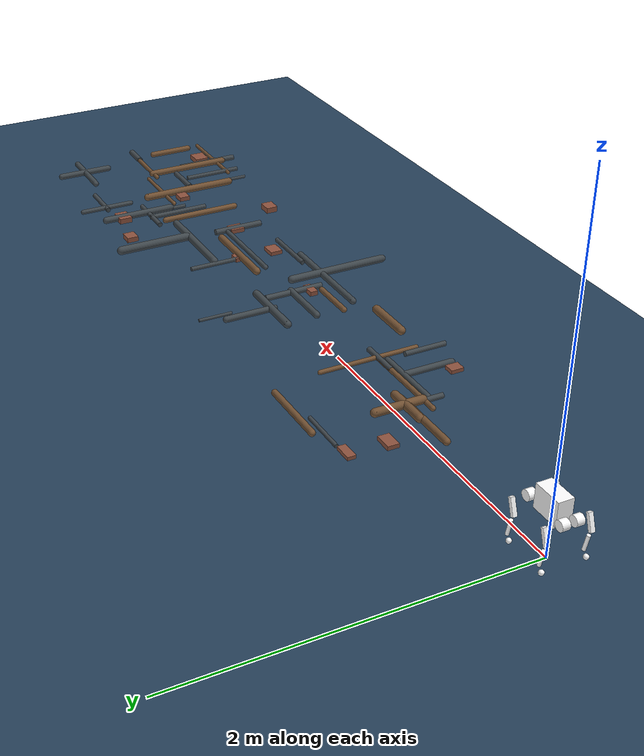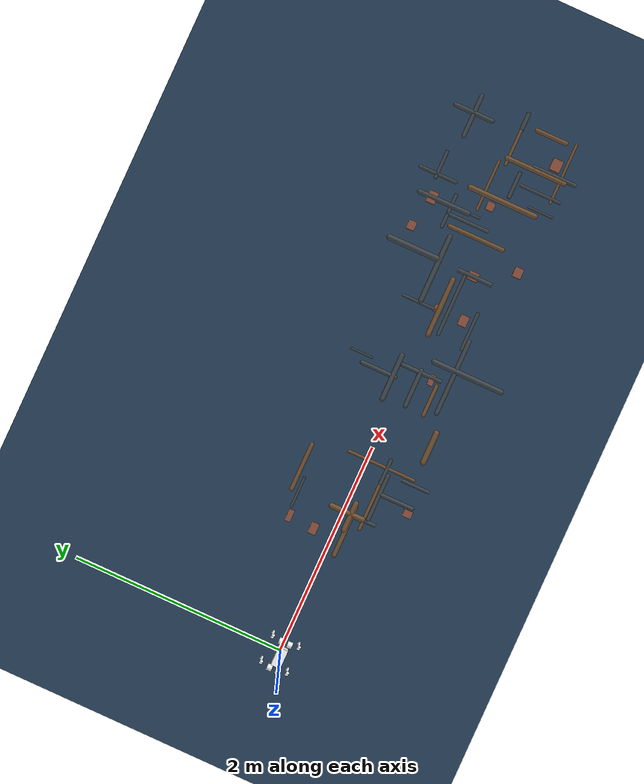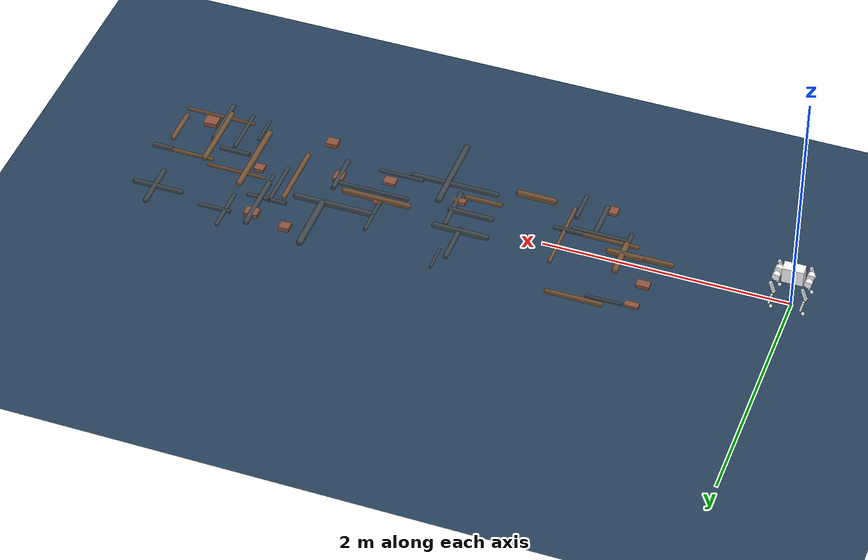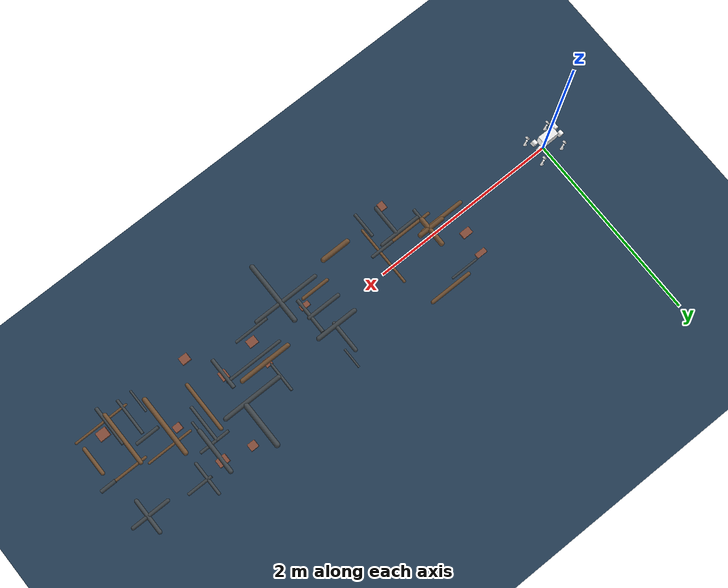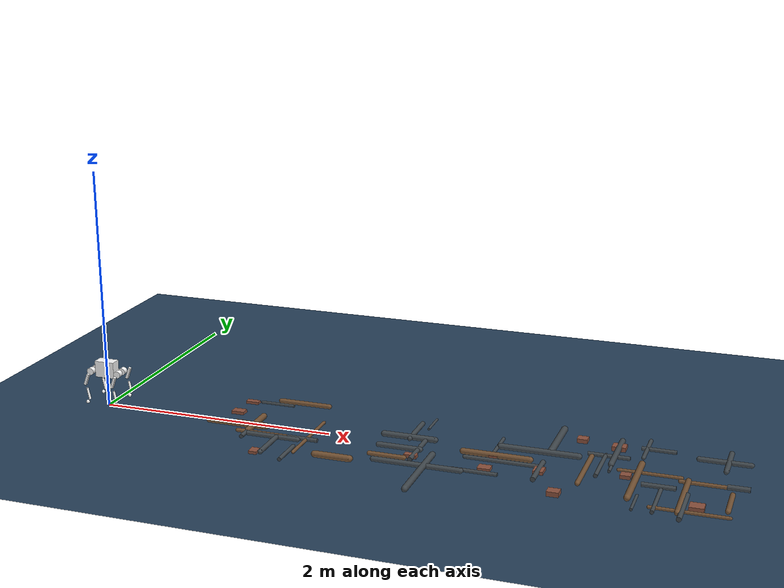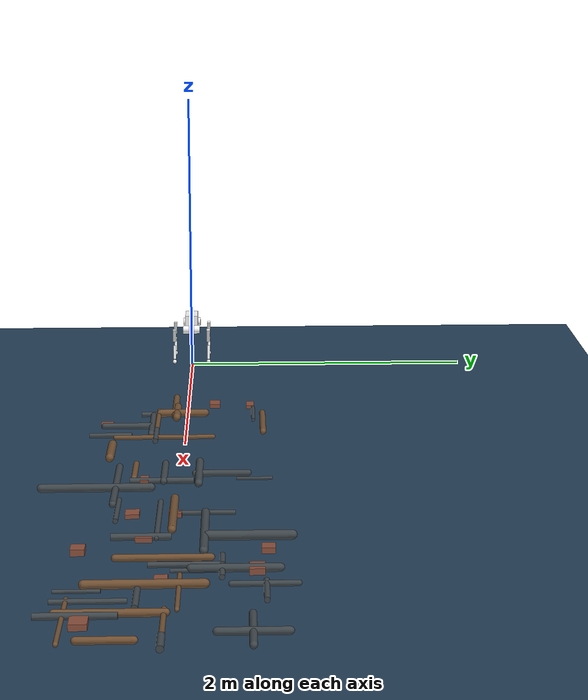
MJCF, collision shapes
<mujoco model="htdw_4438 scene debris logs">
  <include file="htdw_4438.xml"/>

  <statistic center="0 0 0.1" extent="0.8"/>

  <visual>
    <headlight diffuse="0.6 0.6 0.6" ambient="0.3 0.3 0.3" specular="0 0 0"/>
    <rgba haze="0.15 0.25 0.35 1"/>
  </visual>

  <asset>
    <texture type="skybox" builtin="gradient" rgb1="0.3 0.5 0.7" rgb2="0 0 0" width="512" height="3072"/>
    <texture type="2d" name="groundplane" builtin="checker" mark="edge" rgb1="0.2 0.3 0.4" rgb2="0.1 0.2 0.3"
      markrgb="0.8 0.8 0.8" width="300" height="300"/>
    <material name="groundplane" texture="groundplane" texuniform="true" texrepeat="5 5" reflectance="0.2"/>

    <material name="debris_brick" rgba="0.55 0.32 0.24 1" reflectance="0.05"/>
    <material name="debris_metal" rgba="0.25 0.28 0.30 1" reflectance="0.10"/>
    <material name="debris_wood" rgba="0.45 0.32 0.20 1" reflectance="0.05"/>
  </asset>

  <worldbody>
    <light pos="0 0 1.5" dir="0 0 -1" directional="true"/>
    <geom name="floor" size="0 0 0.05" type="plane" material="groundplane"/>

    <!-- Many sideways logs/pipes (static). -->
    <geom pos="1.582 0.509 0.020" quat="0.707107 0 0.707107 0" type="capsule" size="0.020 0.218" material="debris_wood"/>
    <geom pos="5.105 0.420 0.021" quat="0.707107 0.707107 0 0" type="capsule" size="0.021 0.180" material="debris_metal"/>
    <geom pos="2.211 -0.464 0.027" quat="0.707107 0 0.707107 0" type="capsule" size="0.027 0.143" material="debris_wood"/>
    <geom pos="2.594 -0.291 0.018" quat="0.707107 0 0.707107 0" type="capsule" size="0.018 0.143" material="debris_wood"/>
    <geom pos="4.567 0.035 0.013" quat="0.707107 0 0.707107 0" type="capsule" size="0.013 0.238" material="debris_wood"/>
    <geom pos="4.472 0.486 0.016" quat="0.707107 0.707107 0 0" type="capsule" size="0.016 0.177" material="debris_metal"/>
    <geom pos="1.211 -0.083 0.022" quat="0.707107 0 0.707107 0" type="capsule" size="0.022 0.230" material="debris_wood"/>
    <geom pos="2.658 0.244 0.020" quat="0.707107 0.707107 0 0" type="capsule" size="0.020 0.162" material="debris_metal"/>
    <geom pos="3.472 -0.111 0.016" quat="0.707107 0 0.707107 0" type="capsule" size="0.016 0.305" material="debris_metal"/>
    <geom pos="4.485 -0.145 0.025" quat="0.707107 0.707107 0 0" type="capsule" size="0.025 0.317" material="debris_wood"/>
    <geom pos="1.352 -0.070 0.026" quat="0.707107 0 0.707107 0" type="capsule" size="0.026 0.129" material="debris_wood"/>
    <geom pos="1.610 -0.228 0.019" quat="0.707107 0 0.707107 0" type="capsule" size="0.019 0.215" material="debris_metal"/>
    <geom pos="2.634 -0.108 0.021" quat="0.707107 0 0.707107 0" type="capsule" size="0.021 0.172" material="debris_metal"/>
    <geom pos="1.598 -0.193 0.016" quat="0.707107 0 0.707107 0" type="capsule" size="0.016 0.311" material="debris_wood"/>
    <geom pos="4.861 -0.300 0.022" quat="0.707107 0.707107 0 0" type="capsule" size="0.022 0.281" material="debris_wood"/>
    <geom pos="4.093 -0.062 0.020" quat="0.707107 0.707107 0 0" type="capsule" size="0.020 0.261" material="debris_wood"/>
    <geom pos="2.647 0.105 0.024" quat="0.707107 0 0.707107 0" type="capsule" size="0.024 0.213" material="debris_metal"/>
    <geom pos="1.647 -0.392 0.020" quat="0.707107 0.707107 0 0" type="capsule" size="0.020 0.154" material="debris_metal"/>
    <geom pos="2.868 -0.391 0.021" quat="0.707107 0 0.707107 0" type="capsule" size="0.021 0.350" material="debris_metal"/>
    <geom pos="1.376 -0.031 0.026" quat="0.707107 0.707107 0 0" type="capsule" size="0.026 0.151" material="debris_wood"/>
    <geom pos="3.779 0.412 0.028" quat="0.707107 0.707107 0 0" type="capsule" size="0.028 0.235" material="debris_metal"/>
    <geom pos="5.043 -0.030 0.015" quat="0.707107 0 0.707107 0" type="capsule" size="0.015 0.241" material="debris_wood"/>
    <geom pos="4.938 -0.537 0.013" quat="0.707107 0 0.707107 0" type="capsule" size="0.013 0.286" material="debris_wood"/>
    <geom pos="3.397 -0.029 0.024" quat="0.707107 0 0.707107 0" type="capsule" size="0.024 0.268" material="debris_wood"/>
    <geom pos="1.885 -0.138 0.014" quat="0.707107 0.707107 0 0" type="capsule" size="0.014 0.319" material="debris_wood"/>
    <geom pos="2.929 -0.508 0.025" quat="0.707107 0.707107 0 0" type="capsule" size="0.025 0.329" material="debris_metal"/>
    <geom pos="4.263 0.331 0.023" quat="0.707107 0.707107 0 0" type="capsule" size="0.023 0.239" material="debris_metal"/>
    <geom pos="5.196 -0.303 0.020" quat="0.707107 0.707107 0 0" type="capsule" size="0.020 0.143" material="debris_wood"/>
    <geom pos="5.076 0.418 0.020" quat="0.707107 0 0.707107 0" type="capsule" size="0.020 0.197" material="debris_metal"/>
    <geom pos="3.692 0.156 0.024" quat="0.707107 0 0.707107 0" type="capsule" size="0.024 0.311" material="debris_metal"/>

    <geom pos="4.189 0.066 0.016" quat="0.707107 0.707107 0 0" type="cylinder" size="0.016 0.207" material="debris_metal"/>
    <geom pos="1.373 -0.109 0.017" quat="0.707107 0.707107 0 0" type="cylinder" size="0.017 0.202" material="debris_metal"/>
    <geom pos="4.887 -0.471 0.019" quat="0.707107 0.707107 0 0" type="cylinder" size="0.019 0.214" material="debris_metal"/>
    <geom pos="5.226 -0.031 0.020" quat="0.707107 0 0.707107 0" type="cylinder" size="0.020 0.083" material="debris_metal"/>
    <geom pos="4.666 -0.179 0.018" quat="0.707107 0 0.707107 0" type="cylinder" size="0.018 0.128" material="debris_metal"/>
    <geom pos="2.790 -0.119 0.019" quat="0.707107 0.707107 0 0" type="cylinder" size="0.019 0.195" material="debris_metal"/>
    <geom pos="3.359 0.166 0.014" quat="0.707107 0.707107 0 0" type="cylinder" size="0.014 0.164" material="debris_metal"/>
    <geom pos="3.308 -0.358 0.015" quat="0.707107 0 0.707107 0" type="cylinder" size="0.015 0.186" material="debris_metal"/>
    <geom pos="1.843 -0.491 0.016" quat="0.707107 0.707107 0 0" type="cylinder" size="0.016 0.138" material="debris_metal"/>
    <geom pos="4.215 0.259 0.016" quat="0.707107 0 0.707107 0" type="cylinder" size="0.016 0.165" material="debris_metal"/>
    <geom pos="4.564 0.493 0.016" quat="0.707107 0 0.707107 0" type="cylinder" size="0.016 0.136" material="debris_metal"/>
    <geom pos="3.766 -0.198 0.020" quat="0.707107 0.707107 0 0" type="cylinder" size="0.020 0.169" material="debris_metal"/>
    <geom pos="1.852 -0.194 0.017" quat="0.707107 0 0.707107 0" type="cylinder" size="0.017 0.127" material="debris_metal"/>
    <geom pos="4.268 0.104 0.012" quat="0.707107 0.707107 0 0" type="cylinder" size="0.012 0.124" material="debris_metal"/>
    <geom pos="2.733 0.445 0.010" quat="0.707107 0.707107 0 0" type="cylinder" size="0.010 0.109" material="debris_metal"/>
    <geom pos="4.541 -0.493 0.011" quat="0.707107 0.707107 0 0" type="cylinder" size="0.011 0.125" material="debris_metal"/>
    <geom pos="1.360 0.446 0.012" quat="0.707107 0 0.707107 0" type="cylinder" size="0.012 0.149" material="debris_metal"/>
    <geom pos="4.689 -0.423 0.015" quat="0.707107 0.707107 0 0" type="cylinder" size="0.015 0.200" material="debris_metal"/>

    <geom pos="1.589 -0.529 0.012" type="box" size="0.034 0.041 0.012" material="debris_brick"/>
    <geom pos="2.769 -0.227 0.015" type="box" size="0.051 0.026 0.015" material="debris_brick"/>
    <geom pos="3.375 -0.019 0.013" type="box" size="0.035 0.038 0.013" material="debris_brick"/>
    <geom pos="3.370 -0.267 0.013" type="box" size="0.050 0.041 0.013" material="debris_brick"/>
    <geom pos="4.980 -0.447 0.018" type="box" size="0.055 0.048 0.018" material="debris_brick"/>
    <geom pos="3.963 -0.533 0.019" type="box" size="0.047 0.040 0.019" material="debris_brick"/>
    <geom pos="3.958 0.511 0.017" type="box" size="0.042 0.038 0.017" material="debris_brick"/>
    <geom pos="4.262 0.446 0.018" type="box" size="0.055 0.043 0.018" material="debris_brick"/>
    <geom pos="1.124 0.184 0.013" type="box" size="0.054 0.036 0.013" material="debris_brick"/>
    <geom pos="3.770 -0.182 0.014" type="box" size="0.040 0.048 0.014" material="debris_brick"/>
    <geom pos="1.140 0.426 0.011" type="box" size="0.056 0.026 0.011" material="debris_brick"/>
    <geom pos="4.403 -0.062 0.015" type="box" size="0.040 0.036 0.015" material="debris_brick"/>
  </worldbody>
</mujoco>

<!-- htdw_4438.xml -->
<mujoco model="htdw_4438">
    <compiler angle="radian" meshdir="../meshes" />
    <size njmax="500" nconmax="100" />

    <asset>
        <mesh name="base_link_simple" file="base_link_simple.STL" />
        <mesh name="FL_hip" file="FL_hip.STL" />
        <mesh name="FL_thigh" file="FL_thigh.STL" />
        <mesh name="FL_calf" file="FL_calf.STL" />
        <mesh name="FL_foot" file="FL_foot.STL" />
        <mesh name="FR_hip" file="FR_hip.STL" />
        <mesh name="FR_thigh" file="FR_thigh.STL" />
        <mesh name="FR_calf" file="FR_calf.STL" />
        <mesh name="FR_foot" file="FR_foot.STL" />
        <mesh name="RL_hip" file="RL_hip.STL" />
        <mesh name="RL_thigh" file="RL_thigh.STL" />
        <mesh name="RL_calf" file="RL_calf.STL" />
        <mesh name="RL_foot" file="RL_foot.STL" />
        <mesh name="RR_hip" file="RR_hip.STL" />
        <mesh name="RR_thigh" file="RR_thigh.STL" />
        <mesh name="RR_calf" file="RR_calf.STL" />
        <mesh name="RR_foot" file="RR_foot.STL" />
    </asset>

    <!-- 统一设置阻尼、摩擦力、碰撞解算参数 -->
    <default>
        <!-- IsaacGym/LeggedGym cfg.asset.armature = 0.005; 这里对齐以提升数值稳定性 -->
	        <!-- URDF 未显式设置关节被动阻尼；此处设为 0 以对齐 IsaacGym（被动阻尼主要由 PD 的 Kd 提供） -->
	        <joint limited="true" damping="0.0" frictionloss="0.0" armature="0.005"/>
        <!-- 原 solref=0.005 过硬，容易在接触+高频PD下抖动；改为更温和的接触时间常数 -->
        <geom contype="1" conaffinity="1" friction="0.8 0.05 0.05" solref="0.02 1"/>
    </default>

    <worldbody>
        <!-- Robot Base (Root Body) from Snippet -->
        <body name="robot" pos="0 0 0.3" quat="1 0 0 0">
            <joint name="float_base" type="free" limited="false"/>
	        <!-- 与 resources/robots/htdw_4438/urdf/htdw_4438.urdf 的 base_link 惯性对齐（避免 sim2sim gap） -->
	        <inertial pos="-0.00139370 0.00012462 0.01353999" quat="0.05699976 0.72222690 0.06363175 0.68636020" mass="2.68214792" diaginertia="0.01217432 0.01195068 0.00675497"/>
            <site name="imu" pos="-0.02557 0 0.04232" />

            <!-- Adding Visual Geoms from Original File to the Root Body -->
            <geom type="mesh" contype="0" conaffinity="0" group="1" rgba="1 1 1 1" mesh="base_link_simple" />
            <geom size="0.085 0.045 0.069" pos="0 0 0.025" type="box" rgba="1 1 1 1" />

            <!-- Front Left Leg -->
            <!-- Joint names changed to Uppercase to match actuators -->
            <body name="fl_hip" pos="0.0909 0.04 0">
                <inertial pos="0.0326958 0.00444394 -9.507e-05" quat="0.465966 0.463585 0.53558 0.530206" mass="0.292358" diaginertia="0.000412728 0.000405494 8.3118e-05" />
                <joint name="FL_hip_joint" pos="0 0 0" axis="1 0 0" limited="true" range="-0.9 0.9" />
                <geom type="mesh" contype="0" conaffinity="0" group="1" rgba="1 1 1 1" mesh="FL_hip" />
                <geom size="0.03 0.0225" pos="0.035 0 0" quat="0.505398 0.499971 0.499971 -0.494602" type="cylinder" rgba="1 1 1 1" />

                <body name="fl_thigh" pos="0.034 0.0254 0">
                    <inertial pos="-0.00137569 0.0379093 -0.0116534" quat="0.884178 0.465761 0.0354147 -0.00650016" mass="0.410408" diaginertia="0.00122804 0.000985868 0.000366426" />
                    <joint name="FL_thigh_joint" pos="0 0 0" axis="0 1 0" limited="true" range="-1.5 3.5" />
                    <geom type="mesh" contype="0" conaffinity="0" group="1" rgba="1 1 1 1" mesh="FL_thigh" />
                    <geom size="0.01 0.0125 0.05" pos="0.004 0.06 -0.045" quat="0.984727 0 0.174108 0" type="box" rgba="1 1 1 1" />

                    <body name="fl_calf" pos="0 0.0604 -0.12">
                        <inertial pos="0.0101367 -0.000182728 -0.0624887" quat="0.710874 -0.0477597 -0.04827 0.700034" mass="0.0469098" diaginertia="0.000213166 0.000209385 5.3017e-06" />
                        <joint name="FL_calf_joint" pos="0 0 0" axis="0 1 0" limited="true" range="-2.5 -1.2" />
                        <geom type="mesh" contype="0" conaffinity="0" group="1" rgba="1 1 1 1" mesh="FL_calf" />
                        <geom size="0.01 0.05" pos="0.013 0 -0.05" quat="0.995004 0 -0.0998334 0" type="cylinder" rgba="1 1 1 1" />

                        <!-- Foot Geoms -->
                        <geom pos="0.00206 6e-05 -0.13694" type="mesh" contype="0" conaffinity="0" group="1" rgba="1 1 1 1" mesh="FL_foot" />
                        <geom size="0.015" pos="0.00456 6e-05 -0.12424" rgba="1 1 1 1" />
                        <!-- Adding a site for possible contact sensing, though not strictly in the sensor snippet -->
                        <site name="FL_foot_site" pos="0.00456 6e-05 -0.12424" size="0.01" rgba="0 0 1 0.5"/>
                    </body>
                </body>
            </body>

            <!-- Front Right Leg -->
            <body name="fr_hip" pos="0.0909 -0.04 0">
                <inertial pos="0.0326958 -0.00444394 9.507e-05" quat="0.53558 0.530206 0.465966 0.463585" mass="0.292358" diaginertia="0.000412728 0.000405494 8.3118e-05" />
                <joint name="FR_hip_joint" pos="0 0 0" axis="1 0 0" limited="true" range="-0.9 0.9" />
                <geom type="mesh" contype="0" conaffinity="0" group="1" rgba="1 1 1 1" mesh="FR_hip" />
                <geom size="0.03 0.0225" pos="0.035 0 0" quat="0.505398 0.499971 0.499971 -0.494602" type="cylinder" rgba="1 1 1 1" />

                <body name="fr_thigh" pos="0.034 -0.0254 0">
                    <inertial pos="-0.00130371 -0.0379128 -0.0115569" quat="0.466339 0.884003 0.00461373 -0.0323373" mass="0.410408" diaginertia="0.0012278 0.000984249 0.000367077" />
                    <joint name="FR_thigh_joint" pos="0 0 0" axis="0 1 0" limited="true" range="-1.5 3.5" />
                    <geom type="mesh" contype="0" conaffinity="0" group="1" rgba="1 1 1 1" mesh="FR_thigh" />
                    <geom size="0.01 0.0125 0.05" pos="0.004 -0.06 -0.045" quat="0.984727 0 0.174108 0" type="box" rgba="1 1 1 1" />

                    <body name="fr_calf" pos="0 -0.0604 -0.12">
                        <inertial pos="0.0101597 1.52233e-05 -0.0626033" quat="0.698922 -0.0488767 -0.0472409 0.711961" mass="0.0469098" diaginertia="0.000213525 0.000209727 5.30063e-06" />
                        <joint name="FR_calf_joint" pos="0 0 0" axis="0 1 0" limited="true" range="-2.5 -1.2" />
                        <geom type="mesh" contype="0" conaffinity="0" group="1" rgba="1 1 1 1" mesh="FR_calf" />
                        <geom size="0.01 0.05" pos="0.013 0 -0.05" quat="0.995004 0 -0.0998334 0" type="cylinder" rgba="1 1 1 1" />

                        <geom pos="0.00206 6e-05 -0.13694" type="mesh" contype="0" conaffinity="0" group="1" rgba="1 1 1 1" mesh="FR_foot" />
                        <geom size="0.015" pos="0.00456 6e-05 -0.12424" rgba="1 1 1 1" />
                        <site name="FR_foot_site" pos="0.00456 6e-05 -0.12424" size="0.01" rgba="0 0 1 0.5"/>
                    </body>
                </body>
            </body>

            <!-- Rear Left Leg -->
            <body name="rl_hip" pos="-0.0909 0.04 0">
                <inertial pos="-0.0326958 0.00444394 9.507e-05" quat="0.530206 0.53558 0.463585 0.465966" mass="0.292358" diaginertia="0.000412728 0.000405494 8.3118e-05" />
                <joint name="RL_hip_joint" pos="0 0 0" axis="1 0 0" limited="true" range="-0.9 0.9" />
                <geom type="mesh" contype="0" conaffinity="0" group="1" rgba="1 1 1 1" mesh="RL_hip" />
                <geom size="0.03 0.0225" pos="-0.035 0 0" quat="0.505398 0.499971 0.499971 -0.494602" type="cylinder" rgba="1 1 1 1" />

                <body name="rl_thigh" pos="-0.034 0.0254 0">
                    <inertial pos="-0.00137569 0.0379093 -0.0116534" quat="0.884178 0.465761 0.0354147 -0.00650016" mass="0.410408" diaginertia="0.00122804 0.000985868 0.000366426" />
                    <joint name="RL_thigh_joint" pos="0 0 0" axis="0 1 0" limited="true" range="-1.5 3.5" />
                    <geom type="mesh" contype="0" conaffinity="0" group="1" rgba="1 1 1 1" mesh="RL_thigh" />
                    <geom size="0.01 0.0125 0.05" pos="0.004 0.06 -0.045" quat="0.984727 0 0.174108 0" type="box" rgba="1 1 1 1" />

                    <body name="rl_calf" pos="0 0.0604 -0.12">
                        <inertial pos="0.0095589 -0.000182728 -0.0624887" quat="0.709338 -0.0452838 -0.0455386 0.701937" mass="0.0469098" diaginertia="0.000213491 0.000208973 6.03985e-06" />
                        <joint name="RL_calf_joint" pos="0 0 0" axis="0 1 0" limited="true" range="-2.5 -1.2" />
                        <geom type="mesh" contype="0" conaffinity="0" group="1" rgba="1 1 1 1" mesh="RL_calf" />
                        <geom size="0.01 0.05" pos="0.013 0 -0.05" quat="0.995004 0 -0.0998334 0" type="cylinder" rgba="1 1 1 1" />

                        <geom pos="-0.00206 6e-05 -0.13694" type="mesh" contype="0" conaffinity="0" group="1" rgba="1 1 1 1" mesh="RL_foot" />
                        <geom size="0.015" pos="0.00044 6e-05 -0.12424" rgba="1 1 1 1" />
                        <site name="RL_foot_site" pos="0.00044 6e-05 -0.12424" size="0.01" rgba="0 0 1 0.5"/>
                    </body>
                </body>
            </body>

            <!-- Rear Right Leg -->
            <body name="rr_hip" pos="-0.0909 -0.04 0">
                <inertial pos="-0.0326958 -0.00444394 -9.507e-05" quat="0.463585 0.465966 0.530206 0.53558" mass="0.292358" diaginertia="0.000412728 0.000405494 8.3118e-05" />
                <joint name="RR_hip_joint" pos="0 0 0" axis="1 0 0" limited="true" range="-0.9 0.9" />
                <geom type="mesh" contype="0" conaffinity="0" group="1" rgba="1 1 1 1" mesh="RR_hip" />
                <geom size="0.03 0.0225" pos="-0.035 0 0" quat="0.505398 0.499971 0.499971 -0.494602" type="cylinder" rgba="1 1 1 1" />

                <body name="rr_thigh" pos="-0.034 -0.0254 0">
                    <inertial pos="-0.00130371 -0.0379128 -0.0115569" quat="0.466339 0.884003 0.00461373 -0.0323373" mass="0.410408" diaginertia="0.0012278 0.000984249 0.000367077" />
                    <joint name="RR_thigh_joint" pos="0 0 0" axis="0 1 0" limited="true" range="-1.5 3.5" />
                    <geom type="mesh" contype="0" conaffinity="0" group="1" rgba="1 1 1 1" mesh="RR_thigh" />
                    <geom size="0.01 0.0125 0.05" pos="0.004 -0.06 -0.045" quat="0.984727 0 0.174108 0" type="box" rgba="1 1 1 1" />

                    <body name="rr_calf" pos="0 -0.0604 -0.12">
                        <inertial pos="0.00958187 1.52233e-05 -0.0626033" quat="0.698998 -0.0462627 -0.044667 0.712227" mass="0.0469098" diaginertia="0.000213852 0.000209314 6.03965e-06" />
                        <joint name="RR_calf_joint" pos="0 0 0" axis="0 1 0" limited="true" range="-2.5 -1.2" />
                        <geom type="mesh" contype="0" conaffinity="0" group="1" rgba="1 1 1 1" mesh="RR_calf" />
                        <geom size="0.01 0.05" pos="0.013 0 -0.05" quat="0.995004 0 -0.0998334 0" type="cylinder" rgba="1 1 1 1" />

                        <geom pos="-0.00206 6e-05 -0.13694" type="mesh" contype="0" conaffinity="0" group="1" rgba="1 1 1 1" mesh="RR_foot" />
                        <geom size="0.015" pos="0.00044 6e-05 -0.12424" rgba="1 1 1 1" />
                        <site name="RR_foot_site" pos="0.00044 6e-05 -0.12424" size="0.01" rgba="0 0 1 0.5"/>
                    </body>
                </body>
            </body>
        </body>
    </worldbody>

    <!-- Actuator Section from Snippet -->
    <actuator>
        <motor name="FL_hip_joint" joint="FL_hip_joint" gear="1" ctrllimited="true" ctrlrange="-10 10"/>
        <motor name="FL_thigh_joint" joint="FL_thigh_joint" gear="1" ctrllimited="true" ctrlrange="-10 10"/>
        <motor name="FL_calf_joint" joint="FL_calf_joint" gear="1" ctrllimited="true" ctrlrange="-10 10"/>

        <motor name="FR_hip_joint" joint="FR_hip_joint" gear="1" ctrllimited="true" ctrlrange="-10 10"/>
        <motor name="FR_thigh_joint" joint="FR_thigh_joint" gear="1" ctrllimited="true" ctrlrange="-10 10"/>
        <motor name="FR_calf_joint" joint="FR_calf_joint" gear="1" ctrllimited="true" ctrlrange="-10 10"/>

        <motor name="RL_hip_joint" joint="RL_hip_joint" gear="1" ctrllimited="true" ctrlrange="-10 10"/>
        <motor name="RL_thigh_joint" joint="RL_thigh_joint" gear="1" ctrllimited="true" ctrlrange="-10 10"/>
        <motor name="RL_calf_joint" joint="RL_calf_joint" gear="1" ctrllimited="true" ctrlrange="-10 10"/>

        <motor name="RR_hip_joint" joint="RR_hip_joint" gear="1" ctrllimited="true" ctrlrange="-10 10"/>
        <motor name="RR_thigh_joint" joint="RR_thigh_joint" gear="1" ctrllimited="true" ctrlrange="-10 10"/>
        <motor name="RR_calf_joint" joint="RR_calf_joint" gear="1" ctrllimited="true" ctrlrange="-10 10"/>
    </actuator>

    <!-- Sensor Section from Snippet -->
    <sensor>
        <actuatorpos name='FR_hip_joint_p'  actuator='FR_hip_joint' user='13'/>
        <actuatorpos name='FR_thigh_joint_p'  actuator='FR_thigh_joint' user='13'/>
        <actuatorpos name='FR_calf_joint_p'  actuator='FR_calf_joint' user='13'/>
        <actuatorpos name='FL_hip_joint_p'  actuator='FL_hip_joint' user='13'/>
        <actuatorpos name='FL_thigh_joint_p'  actuator='FL_thigh_joint' user='13'/>
        <actuatorpos name='FL_calf_joint_p'  actuator='FL_calf_joint' user='13'/>
        <actuatorpos name='RR_hip_joint_p'  actuator='RR_hip_joint' user='13'/>
        <actuatorpos name='RR_thigh_joint_p'  actuator='RR_thigh_joint' user='13'/>
        <actuatorpos name='RR_calf_joint_p'  actuator='RR_calf_joint' user='13'/>
        <actuatorpos name='RL_hip_joint_p'  actuator='RL_hip_joint' user='13'/>
        <actuatorpos name='RL_thigh_joint_p'  actuator='RL_thigh_joint' user='13'/>
        <actuatorpos name='RL_calf_joint_p'  actuator='RL_calf_joint' user='13'/>

        <actuatorvel name='FR_hip_joint_v'  actuator='FR_hip_joint' user='13'/>
        <actuatorvel name='FR_thigh_joint_v'  actuator='FR_thigh_joint' user='13'/>
        <actuatorvel name='FR_calf_joint_v'  actuator='FR_calf_joint' user='13'/>
        <actuatorvel name='FL_hip_joint_v'  actuator='FL_hip_joint' user='13'/>
        <actuatorvel name='FL_thigh_joint_v'  actuator='FL_thigh_joint' user='13'/>
        <actuatorvel name='FL_calf_joint_v'  actuator='FL_calf_joint' user='13'/>
        <actuatorvel name='RR_hip_joint_v'  actuator='RR_hip_joint' user='13'/>
        <actuatorvel name='RR_thigh_joint_v'  actuator='RR_thigh_joint' user='13'/>
        <actuatorvel name='RR_calf_joint_v'  actuator='RR_calf_joint' user='13'/>
        <actuatorvel name='RL_hip_joint_v'  actuator='RL_hip_joint' user='13'/>
        <actuatorvel name='RL_thigh_joint_v'  actuator='RL_thigh_joint' user='13'/>
        <actuatorvel name='RL_calf_joint_v'  actuator='RL_calf_joint' user='13'/>

        <actuatorfrc name='FR_hip_joint_f'  actuator='FR_hip_joint'  user='13' noise='1e-3'/>
        <actuatorfrc name='FR_thigh_joint_f'  actuator='FR_thigh_joint'  user='13' noise='1e-3'/>
        <actuatorfrc name='FR_calf_joint_f'  actuator='FR_calf_joint'  user='13' noise='1e-3'/>
        <actuatorfrc name='FL_hip_joint_f'  actuator='FL_hip_joint'  user='13' noise='1e-3'/>
        <actuatorfrc name='FL_thigh_joint_f'  actuator='FL_thigh_joint'  user='13' noise='1e-3'/>
        <actuatorfrc name='FL_calf_joint_f'  actuator='FL_calf_joint'  user='13' noise='1e-3'/>
        <actuatorfrc name='RR_hip_joint_f'  actuator='RR_hip_joint'  user='13' noise='1e-3'/>
        <actuatorfrc name='RR_thigh_joint_f'  actuator='RR_thigh_joint'  user='13' noise='1e-3'/>
        <actuatorfrc name='RR_calf_joint_f'  actuator='RR_calf_joint'  user='13' noise='1e-3'/>
        <actuatorfrc name='RL_hip_joint_f'  actuator='RL_hip_joint'  user='13' noise='1e-3'/>
        <actuatorfrc name='RL_thigh_joint_f'  actuator='RL_thigh_joint'  user='13' noise='1e-3'/>
        <actuatorfrc name='RL_calf_joint_f'  actuator='RL_calf_joint'  user='13' noise='1e-3'/>

        <framequat     name='orientation' objtype='site' noise='0.001' objname='imu'/>
        <framepos      name='position' objtype='site' noise='0.001' objname='imu'/>
        <gyro          name='angular-velocity'    site='imu' noise='0.005' cutoff='34.9'/>
        <velocimeter   name='linear-velocity'     site='imu' noise='0.001' cutoff='30'/>
        <accelerometer name='linear-acceleration' site='imu' noise='0.005' cutoff='157'/>
        <magnetometer  name='magnetometer'        site='imu'/>
    </sensor>
</mujoco>
